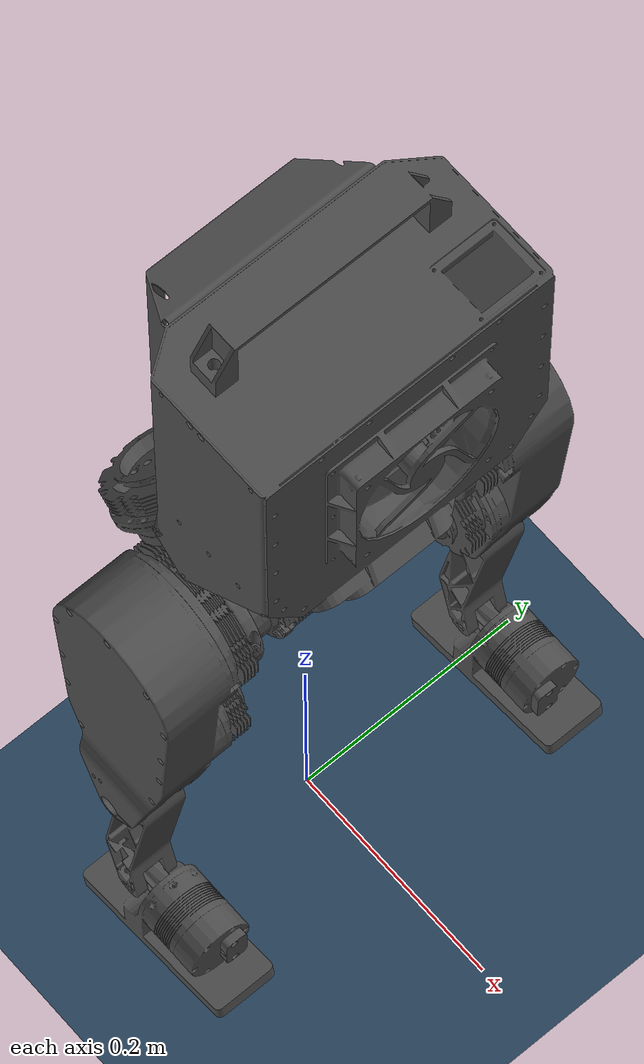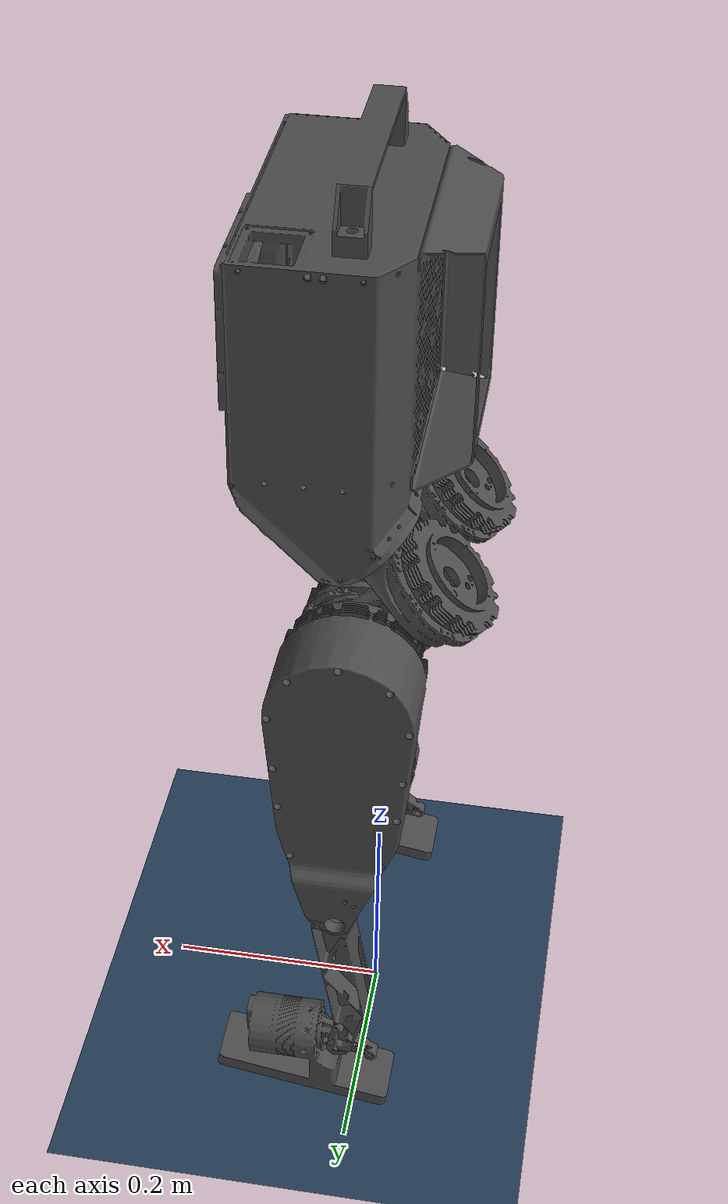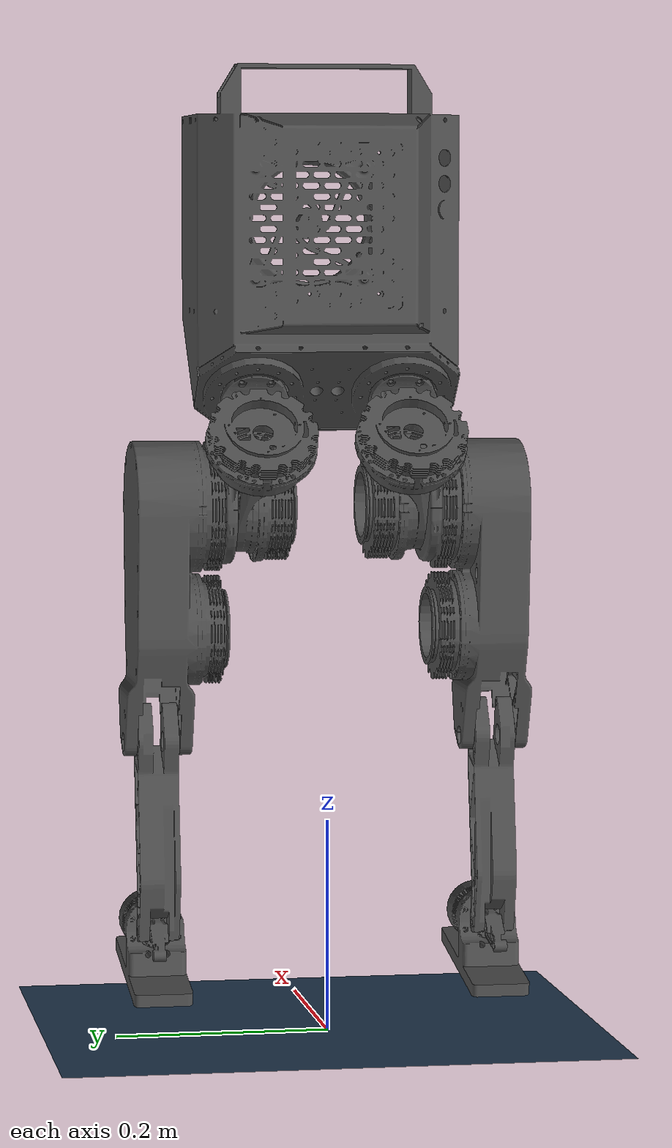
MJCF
<mujoco model="berkeley humanoid scene">
  <include file="berkeley_humanoid.xml"/>

  <statistic meansize="0.05"/>

  <visual>
    <headlight diffuse="0.6 0.6 0.6" ambient="0.3 0.3 0.3" specular="0 0 0"/>
    <rgba haze="0.15 0.25 0.35 1"/>
    <global azimuth="160" elevation="-10"/>
    <quality shadowsize="8192"/>
  </visual>

  <asset>
    <texture type="skybox" builtin="gradient" rgb1="0.3 0.5 0.7" rgb2="0 0 0" width="512" height="3072"/>
    <texture type="2d" name="groundplane" builtin="checker" mark="edge" rgb1="0.2 0.3 0.4" rgb2="0.1 0.2 0.3"
      markrgb="0.8 0.8 0.8" width="300" height="300"/>
    <material name="groundplane" texture="groundplane" texuniform="true" texrepeat="5 5" reflectance="0.2"/>
  </asset>

  <worldbody>
    <light pos="0 0 1.5" dir="0 0 -1" directional="true"/>
    <geom name="floor" size="0 0 0.05" type="plane" material="groundplane"/>
  </worldbody>
</mujoco>

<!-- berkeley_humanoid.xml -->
<mujoco model="berkeley_humanoid">
  <compiler angle="radian" meshdir="assets"/>

  <default>
    <default class="berkeley_humanoid">
      <joint axis="0 0 1"/>
      <position inheritrange="1"/>
      <default class="hxx">
        <joint armature="0.0056" frictionloss="0.3" actuatorfrcrange="-20 20" range="-0.610865 0.610865"/>
        <position kp="10" kv="1.5"/>
      </default>
      <default class="hfe">
        <joint armature="0.007614" frictionloss="0.3" actuatorfrcrange="-30 30" range="-1.74533 0.523599"/>
        <position kp="15" kv="1.5"/>
      </default>
      <default class="kfe">
        <joint armature="0.0056" frictionloss="1.0" actuatorfrcrange="-30 30" range="0 2.0944"/>
        <position kp="1" kv=".1"/>
      </default>
      <default class="ffe">
        <joint armature="0.0056" frictionloss="1.0" actuatorfrcrange="-20 20" range="-0.523599 0.698132"/>
        <position kp="1" kv=".1"/>
      </default>
      <default class="faa">
        <joint armature="0.0004941" frictionloss=".1" actuatorfrcrange="-5 5" range="-0.523599 0.523599"/>
        <position kp="1" kv=".1"/>
      </default>
      <default class="visual">
        <geom type="mesh" contype="0" conaffinity="0" density="0" group="2" material="metal"/>
      </default>
      <default class="collision">
        <geom group="3"/>
        <default class="foot1">
          <geom friction="0.8 0.02 0.01" size="0.08 0.0275 0.006" pos="0 -0.0429038 0.0133277" type="box"/>
        </default>
        <default class="foot2">
          <geom size="0.027 0.0325" pos="0 9.61687e-05 0.0388277" type="cylinder"/>
        </default>
      </default>
      <site size="0.01" rgba="1 0 0 1" group="4"/>
    </default>
  </default>

  <asset>
    <material name="metal" rgba=".3 .3 .3 1"/>

    <mesh file="torso.stl"/>
    <mesh file="ll_hr.stl"/>
    <mesh file="ll_haa.stl"/>
    <mesh file="ll_hfe.stl"/>
    <mesh file="ll_kfe.stl"/>
    <mesh file="ll_ffe.stl"/>
    <mesh file="ll_faa.stl"/>
    <mesh file="lr_hr.stl"/>
    <mesh file="lr_haa.stl"/>
    <mesh file="lr_hfe.stl"/>
    <mesh file="lr_kfe.stl"/>
    <mesh file="lr_ffe.stl"/>
    <mesh file="lr_faa.stl"/>
  </asset>

  <worldbody>
    <light name="spotlight" mode="targetbodycom" target="torso" pos="0 -1 2"/>
    <body name="torso" childclass="berkeley_humanoid" pos="0 0 0.6">
      <freejoint/>
      <site name="imu"/>
      <camera name="track" pos="1.210 -0.435 0.32" xyaxes="0.342 0.940 0.000 -0.321 0.117 0.940" mode="trackcom"/>
      <inertial pos="0.0123294 -0.0023557 0.114047" quat="0.997324 0.0100377 0.00560983 -0.0721951" mass="5.37812"
        diaginertia="0.0900564 0.0815619 0.0530251"/>
      <geom class="visual" mesh="torso"/>
      <geom class="collision" size="0.09 0.125 0.125" pos="0.02 0 0.12" type="box"/>
      <body name="ll_hr" pos="0 0.07 0" quat="0.92388 0 0.382683 0">
        <inertial pos="-0.00717501 0.000638 -0.0603296" quat="0.997785 0.00699266 0.066053 0.00374607" mass="0.797"
          diaginertia="0.00165598 0.00124847 0.000774206"/>
        <joint name="LL_HR" class="hxx"/>
        <geom pos="0 -0.07 0" quat="0.92388 0 -0.382683 0" class="visual" mesh="ll_hr"/>
        <body name="ll_haa" pos="0.0158 0 -0.065" quat="1 0 -1 0">
          <inertial pos="0.000606614 -0.009735 -0.0611092" quat="0.702991 -0.06137 0.0554512 0.706373" mass="0.897"
            diaginertia="0.0018904 0.0014613 0.000923049"/>
          <joint name="LL_HAA" class="hxx"/>
          <geom pos="0.065 -0.07 0.0158" quat="0.92388 0 0.382683 0" class="visual" mesh="ll_haa"/>
          <geom class="collision" size="0.055 0.025" pos="6.77985e-05 -0.015 -0.0649318"
            quat="0.653281 0.653281 0.270598 -0.270598" type="cylinder"/>
          <body name="ll_hfe" pos="0 0.0158 -0.065" quat="0.653281 -0.653281 -0.270598 -0.270598">
            <inertial pos="-0.0596998 -0.000999287 0.045473" quat="-0.00572221 0.744789 -0.0182535 0.667026"
              mass="2.689" diaginertia="0.0191406 0.0181903 0.00583016"/>
            <joint name="LL_HFE" class="hfe"/>
            <geom pos="0.103096 -0.0111723 -0.0858" quat="0.5 0.5 0.5 0.5" class="visual" mesh="ll_hfe"/>
            <geom class="collision" size="0.0615 0.045" pos="9.61687e-05 -2.87143e-07 0.0542" quat="0 -1 -1 0"
              type="cylinder"/>
            <geom class="collision" size="0.052 0.04" pos="-0.114904 -2.87143e-07 0.0592" quat="0 -1 -1 0"
              type="cylinder"/>
            <body name="ll_kfe" pos="-0.22 0 0.0742" quat="1 0 0 0">
              <inertial pos="-0.0856948 -0.00928029 -0.002232" quat="-0.11773 0.702823 -0.0559586 0.69932" mass="0.35"
                diaginertia="0.00161117 0.00159463 9.70556e-05"/>
              <joint name="LL_KFE" class="kfe"/>
              <geom pos="0.323096 -0.0111723 -0.16" quat="0.5 0.5 0.5 0.5" class="visual" mesh="ll_kfe"/>
              <geom class="collision" size="0.015 0.02 0.08" pos="-0.0569038 -0.00117229 0" quat="0.5 0.5 0.5 0.5"
                type="box"/>
              <body name="ll_ffe" pos="-0.18 0 0">
                <inertial pos="-0.00107817 0.0237707 6.8e-05" quat="0.553259 0.458091 -0.532546 0.447717"
                  mass="0.0993228" diaginertia="8.20308e-05 7.84322e-05 9.34827e-06"/>
                <joint name="LL_FFE" class="ffe"/>
                <geom pos="0.503096 -0.0111723 -0.16" quat="0.5 0.5 0.5 0.5" class="visual" mesh="ll_ffe"/>
                <body name="ll_faa" pos="0 0.0175 0" quat="0.5 -0.5 -0.5 -0.5">
                  <inertial pos="-2.9e-05 -0.0163978 0.0153387" quat="0.985258 -0.171058 -0.00255986 0.000455342"
                    mass="0.507" diaginertia="0.00109422 0.000978734 0.000375399"/>
                  <joint name="LL_FAA" class="faa"/>
                  <geom pos="-0.16 0.503096 -0.0286723" quat="0.5 -0.5 -0.5 -0.5" class="visual" mesh="ll_faa"/>
                  <geom class="foot1" quat="0.45452 -0.541675 -0.541675 -0.45452"/>
                  <geom class="foot2" quat="0 -1 -1 0"/>
                  <site name="LL_FOOT" pos="0 -0.048689 0.014485" quat="-0.454519 0.541675 0.541675 0.454519"/>
                </body>
              </body>
            </body>
          </body>
        </body>
      </body>
      <body name="lr_hr" pos="0 -0.07 0" quat="0.92388 0 0.382683 0">
        <inertial pos="-0.00717501 -0.000638 -0.0603296" quat="0.997804 -0.00433689 0.066057 0.0019766" mass="0.797"
          diaginertia="0.00165632 0.00124845 0.000774613"/>
        <joint name="LR_HR" class="hxx"/>
        <geom pos="0 0.07 0" quat="0.92388 0 -0.382683 0" class="visual" mesh="lr_hr"/>
        <body name="lr_haa" pos="0.0158 0 -0.065" quat="1 0 -1 0">
          <inertial pos="0.000606614 0.009735 -0.0611092" quat="0.704792 0.0582267 -0.0597566 0.704491" mass="0.897"
            diaginertia="0.00189204 0.00146613 0.000918492"/>
          <joint name="LR_HAA" class="hxx"/>
          <geom pos="0.065 0.07 0.0158" quat="0.92388 0 0.382683 0" class="visual" mesh="lr_haa"/>
          <geom class="collision" size="0.055 0.025" pos="6.77985e-05 0.015 -0.0649318"
            quat="0.653281 0.653281 0.270598 -0.270598" type="cylinder"/>
          <body name="lr_hfe" pos="0 -0.0158 -0.065" quat="0.653281 -0.653281 -0.270598 -0.270598">
            <inertial pos="-0.0596998 -0.000999287 -0.045473" quat="0.018407 0.667006 0.00579507 0.744802" mass="2.689"
              diaginertia="0.0191386 0.0181883 0.00582996"/>
            <joint name="LR_HFE" class="hfe"/>
            <geom pos="0.103096 -0.0111723 0.0858" quat="0.5 0.5 0.5 0.5" class="visual" mesh="lr_hfe"/>
            <geom class="collision" size="0.0615 0.045" pos="9.61687e-05 -2.87143e-07 -0.0542" quat="0 -1 -1 0"
              type="cylinder"/>
            <geom class="collision" size="0.052 0.04" pos="-0.114904 -2.87143e-07 -0.0592" quat="0 -1 -1 0"
              type="cylinder"/>
            <body name="lr_kfe" pos="-0.22 0 -0.0742" quat="1 0 0 0">
              <inertial pos="-0.0856948 -0.00928029 0.002232" quat="0.055958 0.69932 0.11773 0.702823" mass="0.35"
                diaginertia="0.00161117 0.00159463 9.70556e-05"/>
              <joint name="LR_KFE" class="kfe"/>
              <geom pos="0.323096 -0.0111723 0.16" quat="0.5 0.5 0.5 0.5" class="visual" mesh="lr_kfe"/>
              <geom class="collision" size="0.015 0.02 0.08" pos="-0.0569038 -0.00117229 0" quat="0.5 0.5 0.5 0.5"
                type="box"/>
              <body name="lr_ffe" pos="-0.18 0 0" quat="1 0 0 0">
                <inertial pos="-0.00107817 0.0237707 -6.8e-05" quat="0.532548 0.447721 -0.553256 0.45809"
                  mass="0.0993223" diaginertia="8.20306e-05 7.84321e-05 9.34825e-06"/>
                <joint name="LR_FFE" class="ffe"/>
                <geom pos="0.503096 -0.0111723 0.16" quat="0.5 0.5 0.5 0.5" class="visual" mesh="lr_ffe"/>
                <body name="lr_faa" pos="0 0.0175 0" quat="0.5 -0.5 -0.5 -0.5">
                  <inertial pos="2.9e-05 -0.0163368 0.0153387" quat="0.985231 -0.171209 0.00251902 -0.000808065"
                    mass="0.507" diaginertia="0.00109488 0.000978788 0.000376011"/>
                  <joint name="LR_FAA" class="faa"/>
                  <geom pos="0.16 0.503096 -0.0286723" quat="0.5 -0.5 -0.5 -0.5" class="visual" mesh="lr_faa"/>
                  <geom class="foot1" quat="-0.45452 0.541675 0.541675 0.45452"/>
                  <geom class="foot2" quat="0 1 1 0"/>
                  <site name="LR_FOOT" pos="0 -0.048689 0.014485" quat="0.454519 -0.541675 -0.541675 -0.454519"/>
                </body>
              </body>
            </body>
          </body>
        </body>
      </body>
    </body>
  </worldbody>

  <actuator>
    <position class="hxx" name="LL_HR" joint="LL_HR"/>
    <position class="hxx" name="LL_HAA" joint="LL_HAA"/>
    <position class="hfe" name="LL_HFE" joint="LL_HFE"/>
    <position class="kfe" name="LL_KFE" joint="LL_KFE"/>
    <position class="ffe" name="LL_FFE" joint="LL_FFE"/>
    <position class="faa" name="LL_FAA" joint="LL_FAA"/>

    <position class="hxx" name="LR_HR" joint="LR_HR"/>
    <position class="hxx" name="LR_HAA" joint="LR_HAA"/>
    <position class="hfe" name="LR_HFE" joint="LR_HFE"/>
    <position class="kfe" name="LR_KFE" joint="LR_KFE"/>
    <position class="ffe" name="LR_FFE" joint="LR_FFE"/>
    <position class="faa" name="LR_FAA" joint="LR_FAA"/>
  </actuator>

  <sensor>
    <gyro site="imu" name="local_rpyrate"/>
    <velocimeter site="imu" name="local_linvel"/>
    <accelerometer site="imu" name="accelerometer"/>
    <framepos objtype="site" objname="imu" name="position"/>
    <framezaxis objtype="site" objname="imu" name="upvector"/>
    <framexaxis objtype="site" objname="imu" name="forwardvector"/>
    <framelinvel objtype="site" objname="imu" name="global_linvel"/>
    <frameangvel objtype="site" objname="imu" name="global_angvel"/>
    <framequat objtype="site" objname="imu" name="orientation"/>
    <framelinvel objtype="site" objname="LL_FOOT" name="left_foot_global_linvel"/>
    <framelinvel objtype="site" objname="LR_FOOT" name="right_foot_global_linvel"/>
    <force site="LL_FOOT" name="left_foot_force"/>
    <force site="LR_FOOT" name="right_foot_force"/>
  </sensor>

  <keyframe>
    <key name="home"
      qpos="0 0 0.515 1 0 0 0 -0.071 0.103 -0.463 0.983 -0.350 0.126 0.071 -0.103 -0.463 0.983 -0.350 -0.126"
      ctrl="-0.071 0.103 -0.463 0.983 -0.350 0.126 0.071 -0.103 -0.463 0.983 -0.350 -0.126"/>
  </keyframe>
</mujoco>
